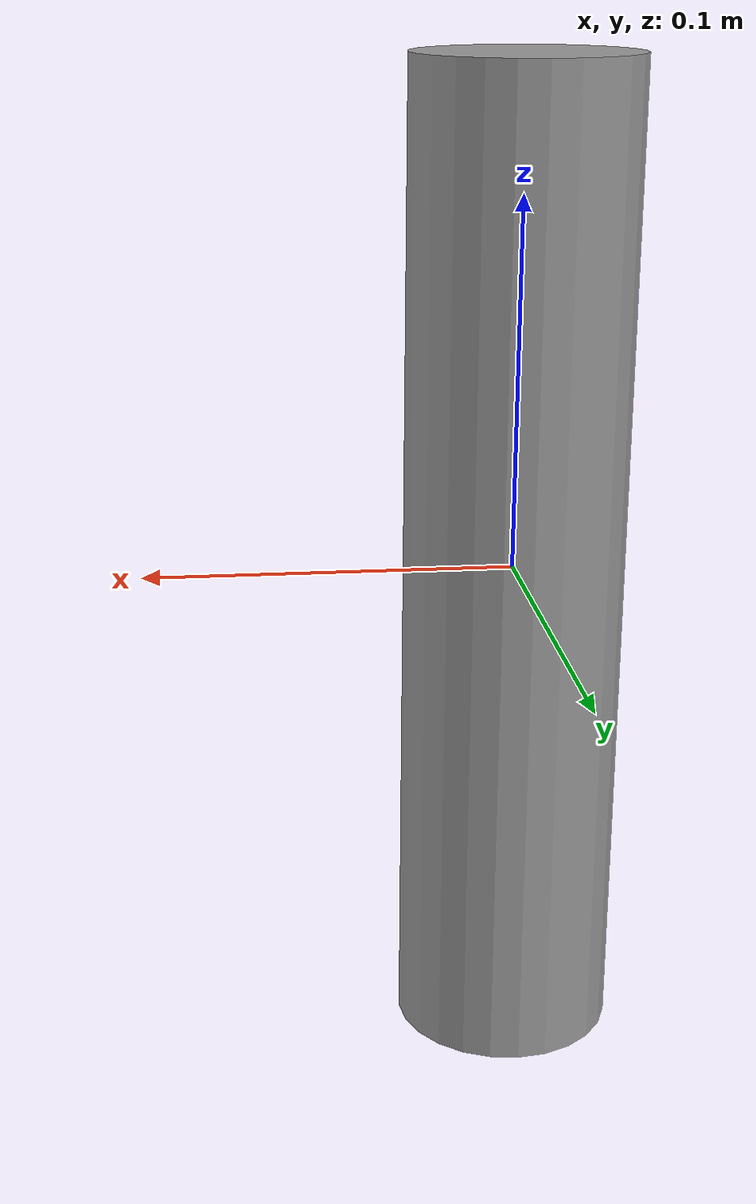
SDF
<?xml version='1.0'?>
<sdf version='1.7'>
  <model name='float'>
    <link name='link'>
      <inertial>
        <mass>0.2</mass>
        <inertia>
          <ixx>0.00071167</ixx>
          <ixy>0</ixy>
          <ixz>0</ixz>
          <iyy>0.00071167</iyy>
          <iyz>0</iyz>
          <izz>9e-05</izz>
        </inertia>
        <pose>0 0 0 0 -0 0</pose>
      </inertial>
      <self_collide>0</self_collide>
      <enable_wind>0</enable_wind>
      <kinematic>0</kinematic>
      <pose>0 0 0 0 -0 0</pose>
      <gravity>1</gravity>
      <visual name='visual'>
        <geometry>
          <cylinder>
            <radius>0.03</radius>
            <length>0.27</length>
          </cylinder>
        </geometry>
        <material>
          <script>
            <name>Gazebo/Grey</name>
            <uri>file://media/materials/scripts/gazebo.material</uri>
          </script>
          <shader type='pixel'>
            <normal_map>__default__</normal_map>
          </shader>
          <ambient>0.3 0.3 0.3 1</ambient>
          <diffuse>0.7 0.7 0.7 1</diffuse>
          <specular>0.01 0.01 0.01 1</specular>
          <emissive>0 0 0 1</emissive>
        </material>
        <pose>0 0 0 0 -0 0</pose>
        <transparency>0</transparency>
        <cast_shadows>1</cast_shadows>
      </visual>
      <collision name='collision_1'>
        <laser_retro>0</laser_retro>
        <max_contacts>10</max_contacts>
        <pose>0 0 0.13 0 -0 0</pose>
        <geometry>
          <cylinder>
            <radius>0.06</radius>
            <length>0.01</length>
          </cylinder>
        </geometry>
        <surface>
          <friction>
            <ode>
              <mu>1</mu>
              <mu2>1</mu2>
              <fdir1>0 0 0</fdir1>
              <slip1>0</slip1>
              <slip2>0</slip2>
            </ode>
            <torsional>
              <coefficient>1</coefficient>
              <patch_radius>0</patch_radius>
              <surface_radius>0</surface_radius>
              <use_patch_radius>1</use_patch_radius>
              <ode>
                <slip>0</slip>
              </ode>
            </torsional>
          </friction>
          <bounce>
            <restitution_coefficient>0</restitution_coefficient>
            <threshold>1e+06</threshold>
          </bounce>
          <contact>
            <collide_without_contact>0</collide_without_contact>
            <collide_without_contact_bitmask>1</collide_without_contact_bitmask>
            <collide_bitmask>1</collide_bitmask>
            <ode>
              <soft_cfm>0</soft_cfm>
              <soft_erp>0.2</soft_erp>
              <kp>1e+13</kp>
              <kd>1</kd>
              <max_vel>0.01</max_vel>
              <min_depth>0</min_depth>
            </ode>
            <bullet>
              <split_impulse>1</split_impulse>
              <split_impulse_penetration_threshold>-0.01</split_impulse_penetration_threshold>
              <soft_cfm>0</soft_cfm>
              <soft_erp>0.2</soft_erp>
              <kp>1e+13</kp>
              <kd>1</kd>
            </bullet>
          </contact>
        </surface>
      </collision>
      <collision name='collision'>
        <laser_retro>0</laser_retro>
        <max_contacts>10</max_contacts>
        <pose>0 0 0 0 -0 0</pose>
        <geometry>
          <cylinder>
            <radius>0.03</radius>
            <length>0.27</length>
          </cylinder>
        </geometry>
        <surface>
          <friction>
            <ode>
              <mu>1</mu>
              <mu2>1</mu2>
              <fdir1>0 0 0</fdir1>
              <slip1>0</slip1>
              <slip2>0</slip2>
            </ode>
            <torsional>
              <coefficient>1</coefficient>
              <patch_radius>0</patch_radius>
              <surface_radius>0</surface_radius>
              <use_patch_radius>1</use_patch_radius>
              <ode>
                <slip>0</slip>
              </ode>
            </torsional>
          </friction>
          <bounce>
            <restitution_coefficient>0</restitution_coefficient>
            <threshold>1e+06</threshold>
          </bounce>
          <contact>
            <collide_without_contact>0</collide_without_contact>
            <collide_without_contact_bitmask>1</collide_without_contact_bitmask>
            <collide_bitmask>1</collide_bitmask>
            <ode>
              <soft_cfm>0</soft_cfm>
              <soft_erp>0.2</soft_erp>
              <kp>1e+13</kp>
              <kd>1</kd>
              <max_vel>0.01</max_vel>
              <min_depth>0</min_depth>
            </ode>
            <bullet>
              <split_impulse>1</split_impulse>
              <split_impulse_penetration_threshold>-0.01</split_impulse_penetration_threshold>
              <soft_cfm>0</soft_cfm>
              <soft_erp>0.2</soft_erp>
              <kp>1e+13</kp>
              <kd>1</kd>
            </bullet>
          </contact>
        </surface>
      </collision>
    </link>
    <static>0</static>
    <allow_auto_disable>1</allow_auto_disable>
    <plugin name='float_buoyancy' filename='libBuoyancyPlugin.so'>
      <fluid_density>228.25</fluid_density>
    </plugin>
  </model>
</sdf>
